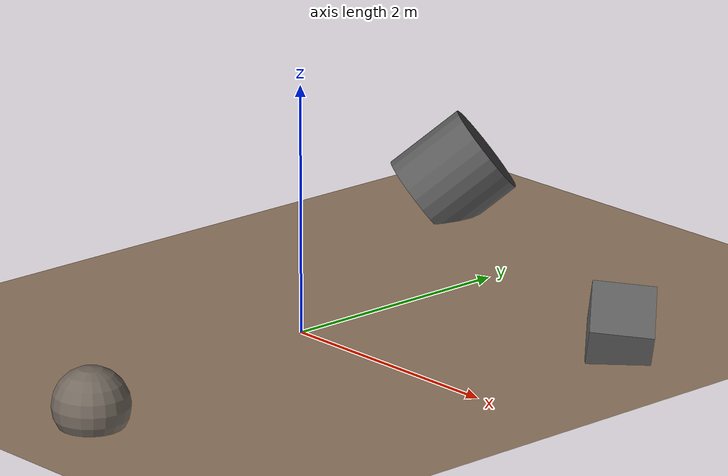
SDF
<?xml version="1.0" ?>
<sdf version="1.8">
  <world name="rover_world">

    <!-- Physics Engine Settings -->
    <physics name="1ms" type="ignored">
      <max_step_size>0.001</max_step_size>
      <real_time_factor>1.0</real_time_factor>
    </physics>

    <!-- Plugins for basic simulation functionality -->
    <plugin filename="gz-sim-physics-system" name="gz::sim::systems::Physics" />
    <plugin filename="gz-sim-user-commands-system" name="gz::sim::systems::UserCommands" />
    <plugin filename="gz-sim-scene-broadcaster-system" name="gz::sim::systems::SceneBroadcaster" />
    <plugin filename="gz-sim-sensors-system" name="gz::sim::systems::Sensors">
      <render_engine>ogre2</render_engine>
    </plugin>

    <!-- Global Light Source -->
    <light type="directional" name="sun">
      <cast_shadows>true</cast_shadows>
      <pose>0 0 10 0 0 0</pose>
      <diffuse>0.8 0.8 0.8 1</diffuse>
      <specular>0.2 0.2 0.2 1</specular>
      <attenuation>
        <range>1000</range>
        <constant>0.9</constant>
        <linear>0.01</linear>
        <quadratic>0.001</quadratic>
      </attenuation>
      <direction>-0.5 0.1 -0.9</direction>
    </light>

    <!-- Flat Ground Plane -->
    <model name="ground_plane">
      <static>true</static>
      <link name="link">
        <collision name="collision">
          <geometry>
            <plane>
              <normal>0 0 1</normal>
              <size>100 100</size>
            </plane>
          </geometry>
        </collision>
        <visual name="visual">
          <geometry>
            <plane>
              <normal>0 0 1</normal>
              <size>100 100</size>
            </plane>
          </geometry>
          <material>
            <ambient>0.6 0.5 0.4 1</ambient>
            <diffuse>0.6 0.5 0.4 1</diffuse> <!-- Sandy/dirt color -->
          </material>
        </visual>
      </link>
    </model>

    <!-- Rock 1: Small Box Rock -->
    <model name="rock_1">
      <static>true</static>
      <pose>2.0 1.5 0.2 0.4 0.1 0.8</pose>
      <link name="link">
        <collision name="collision">
          <geometry>
            <box>
              <size>0.5 0.6 0.4</size>
            </box>
          </geometry>
        </collision>
        <visual name="visual">
          <geometry>
            <box>
              <size>0.5 0.6 0.4</size>
            </box>
          </geometry>
          <material>
            <ambient>0.4 0.4 0.4 1</ambient>
            <diffuse>0.4 0.4 0.4 1</diffuse> <!-- Grey rock color -->
          </material>
        </visual>
      </link>
    </model>

    <!-- Rock 2: Medium Cylinder Rock -->
    <model name="rock_2">
      <static>true</static>
      <pose>-1.5 3.0 0.3 0.2 0.9 1.2</pose>
      <link name="link">
        <collision name="collision">
          <geometry>
            <cylinder>
              <radius>0.4</radius>
              <length>0.7</length>
            </cylinder>
          </geometry>
        </collision>
        <visual name="visual">
          <geometry>
            <cylinder>
              <radius>0.4</radius>
              <length>0.7</length>
            </cylinder>
          </geometry>
          <material>
            <ambient>0.35 0.35 0.35 1</ambient>
            <diffuse>0.35 0.35 0.35 1</diffuse>
          </material>
        </visual>
      </link>
    </model>

    <!-- Rock 3: Angular Sphere Rock -->
    <model name="rock_3">
      <static>true</static>
      <pose>0.5 -2.5 0.15 0 0 0</pose>
      <link name="link">
        <collision name="collision">
          <geometry>
            <sphere>
              <radius>0.3</radius>
            </sphere>
          </geometry>
        </collision>
        <visual name="visual">
          <geometry>
            <sphere>
              <radius>0.3</radius>
            </sphere>
          </geometry>
          <material>
            <ambient>0.45 0.41 0.37 1</ambient>
            <diffuse>0.45 0.41 0.37 1</diffuse>
          </material>
        </visual>
      </link>
    </model>

  </world>
</sdf>
